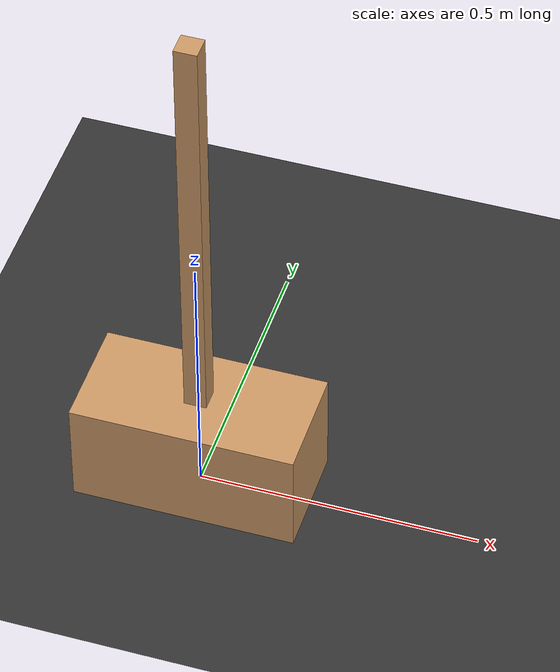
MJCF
<mujoco model="inverted_pendulum">
    <compiler angle="radian" coordinate="local"/>
    <option timestep="0.01" gravity="0 0 -9.81"/>
    <default>
        <joint limited="false" damping="0"/>
        <geom type="box" rgba="0.8 0.6 0.4 1"/>
    </default>
    <worldbody>
        <geom name="ground" type="plane" pos="0 0 0" size="10 10 0.1" rgba="0.2 0.2 0.2 1"/>
        <body name="cart" pos="0 0 0.1">
            <inertial mass="1.0" pos="0 0 0" diaginertia="0.1 0.4 0.4"/>
            <joint name="slider" type="slide" axis="1 0 0"/>
            <geom size="0.2 0.1 0.1"/>
            <body name="pole" pos="0 0 0.1">
                <inertial mass="0.2" pos="0 0 0.4" diaginertia="0.01 0.01 0.0001"/>
                <joint name="hinge" type="hinge" axis="0 1 0"/>
                <geom size="0.02 0.02 0.4" pos="0 0 0.4"/>
            </body>
        </body>
    </worldbody>
    <actuator>
        <motor joint="slider" ctrlrange="-1000 1000"/>
    </actuator>
</mujoco>
